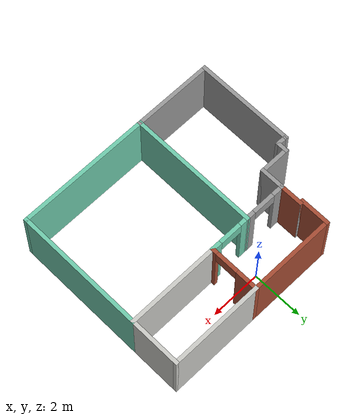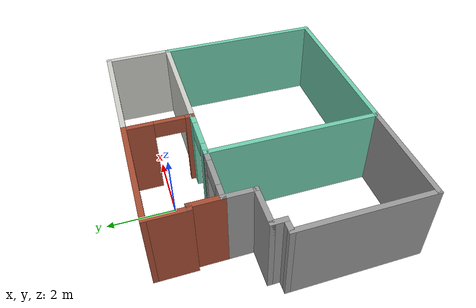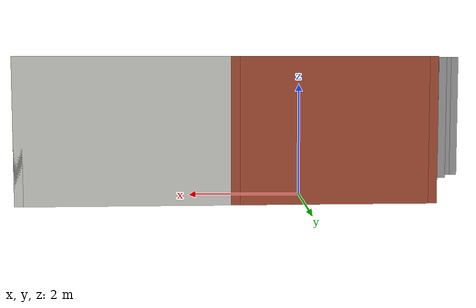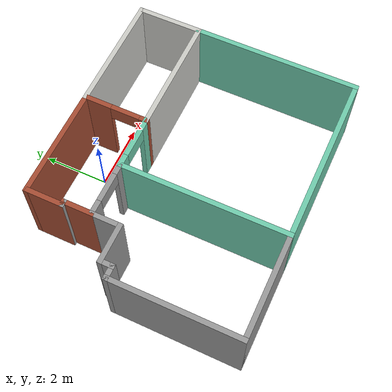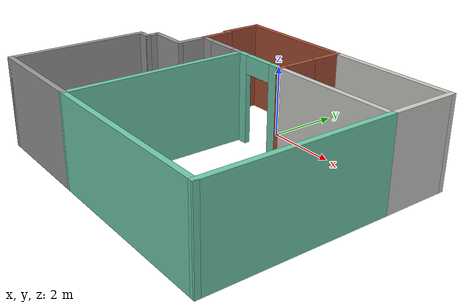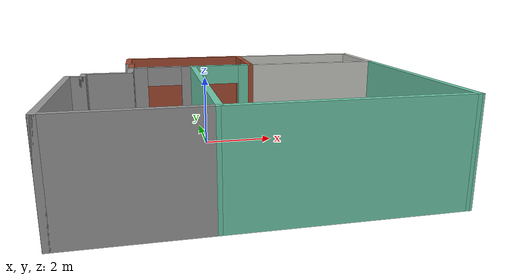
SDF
<?xml version='1.0'?>
<sdf version='1.6'>
  <model name='model'>
    <pose frame=''>0.624047 -2.53382 0 0 -0 0</pose>
    <link name='Wall_24'>
      <collision name='Wall_24_Collision'>
        <geometry>
          <box>
            <size>1.25 0.15 2.5</size>
          </box>
        </geometry>
        <pose frame=''>0 0 1.25 0 -0 0</pose>
      </collision>
      <visual name='Wall_24_Visual'>
        <pose frame=''>0 0 1.25 0 -0 0</pose>
        <geometry>
          <box>
            <size>1.25 0.15 2.5</size>
          </box>
        </geometry>
        <material>
          <script>
            <uri>file://media/materials/scripts/gazebo.material</uri>
            <name>Gazebo/Bricks</name>
          </script>
          <ambient>1 1 1 1</ambient>
        </material>
        <meta>
          <layer>0</layer>
        </meta>
      </visual>
      <pose frame=''>-2.79996 2.95018 0 0 0 -1.5708</pose>
    </link>
    <link name='Wall_26'>
      <collision name='Wall_26_Collision'>
        <geometry>
          <box>
            <size>0.25 0.15 2.5</size>
          </box>
        </geometry>
        <pose frame=''>0 0 1.25 0 -0 0</pose>
      </collision>
      <visual name='Wall_26_Visual'>
        <pose frame=''>0 0 1.25 0 -0 0</pose>
        <geometry>
          <box>
            <size>0.25 0.15 2.5</size>
          </box>
        </geometry>
        <material>
          <script>
            <uri>file://media/materials/scripts/gazebo.material</uri>
            <name>Gazebo/Grey</name>
          </script>
          <ambient>1 1 1 1</ambient>
        </material>
        <meta>
          <layer>0</layer>
        </meta>
      </visual>
      <pose frame=''>-2.74996 2.40017 0 0 -0 0</pose>
    </link>
    <link name='Wall_27'>
      <collision name='Wall_27_Collision'>
        <geometry>
          <box>
            <size>1 0.15 2.5</size>
          </box>
        </geometry>
        <pose frame=''>0 0 1.25 0 -0 0</pose>
      </collision>
      <visual name='Wall_27_Visual'>
        <pose frame=''>0 0 1.25 0 -0 0</pose>
        <geometry>
          <box>
            <size>1 0.15 2.5</size>
          </box>
        </geometry>
        <material>
          <script>
            <uri>file://media/materials/scripts/gazebo.material</uri>
            <name>Gazebo/Bricks</name>
          </script>
          <ambient>1 1 1 1</ambient>
        </material>
        <meta>
          <layer>0</layer>
        </meta>
      </visual>
      <pose frame=''>-2.69996 1.97517 0 0 0 -1.5708</pose>
    </link>
    <link name='Wall_28'>
      <pose frame=''>-1.89996 1.55018 0 0 -0 0</pose>
      <visual name='Wall_28_Visual_0'>
        <pose frame=''>-0.625185 0 1.25 0 -0 0</pose>
        <geometry>
          <box>
            <size>0.49963 0.15 2.5</size>
          </box>
        </geometry>
        <material>
          <script>
            <uri>file://media/materials/scripts/gazebo.material</uri>
            <name>Gazebo/Grey</name>
          </script>
          <ambient>1 1 1 1</ambient>
        </material>
        <meta>
          <layer>0</layer>
        </meta>
      </visual>
      <collision name='Wall_28_Collision_0'>
        <geometry>
          <box>
            <size>0.49963 0.15 2.5</size>
          </box>
        </geometry>
        <pose frame=''>-0.625185 0 1.25 0 -0 0</pose>
      </collision>
      <visual name='Wall_28_Visual_1'>
        <pose frame=''>0.699815 0 1.25 0 -0 0</pose>
        <geometry>
          <box>
            <size>0.35037 0.15 2.5</size>
          </box>
        </geometry>
        <material>
          <script>
            <uri>file://media/materials/scripts/gazebo.material</uri>
            <name>Gazebo/Grey</name>
          </script>
          <ambient>1 1 1 1</ambient>
        </material>
        <meta>
          <layer>0</layer>
        </meta>
      </visual>
      <collision name='Wall_28_Collision_1'>
        <geometry>
          <box>
            <size>0.35037 0.15 2.5</size>
          </box>
        </geometry>
        <pose frame=''>0.699815 0 1.25 0 -0 0</pose>
      </collision>
      <visual name='Wall_28_Visual_2'>
        <pose frame=''>0.07463 0 2.25 0 -0 0</pose>
        <geometry>
          <box>
            <size>0.9 0.15 0.5</size>
          </box>
        </geometry>
        <material>
          <script>
            <uri>file://media/materials/scripts/gazebo.material</uri>
            <name>Gazebo/Grey</name>
          </script>
          <ambient>1 1 1 1</ambient>
        </material>
        <meta>
          <layer>0</layer>
        </meta>
      </visual>
      <collision name='Wall_28_Collision_2'>
        <geometry>
          <box>
            <size>0.9 0.15 0.5</size>
          </box>
        </geometry>
        <pose frame=''>0.07463 0 2.25 0 -0 0</pose>
      </collision>
    </link>
    <link name='Wall_30'>
      <collision name='Wall_30_Collision'>
        <geometry>
          <box>
            <size>1 0.15 2.5</size>
          </box>
        </geometry>
        <pose frame=''>0 0 1.25 0 -0 0</pose>
      </collision>
      <visual name='Wall_30_Visual'>
        <pose frame=''>0 0 1.25 0 -0 0</pose>
        <geometry>
          <box>
            <size>1 0.15 2.5</size>
          </box>
        </geometry>
        <material>
          <script>
            <uri>file://media/materials/scripts/gazebo.material</uri>
            <name>Gazebo/Grey</name>
          </script>
          <ambient>1 1 1 1</ambient>
        </material>
        <meta>
          <layer>0</layer>
        </meta>
      </visual>
      <pose frame=''>-2.69996 1.12518 0 0 0 -1.5708</pose>
    </link>
    <link name='Wall_32'>
      <collision name='Wall_32_Collision'>
        <geometry>
          <box>
            <size>1.25 0.15 2.5</size>
          </box>
        </geometry>
        <pose frame=''>0 0 1.25 0 -0 0</pose>
      </collision>
      <visual name='Wall_32_Visual'>
        <pose frame=''>0 0 1.25 0 -0 0</pose>
        <geometry>
          <box>
            <size>1.25 0.15 2.5</size>
          </box>
        </geometry>
        <material>
          <script>
            <uri>file://media/materials/scripts/gazebo.material</uri>
            <name>Gazebo/Grey</name>
          </script>
          <ambient>1 1 1 1</ambient>
        </material>
        <meta>
          <layer>0</layer>
        </meta>
      </visual>
      <pose frame=''>-3.24996 0.700175 0 0 -0 3.14159</pose>
    </link>
    <link name='Wall_33'>
      <collision name='Wall_33_Collision'>
        <geometry>
          <box>
            <size>0.5 0.15 2.5</size>
          </box>
        </geometry>
        <pose frame=''>0 0 1.25 0 -0 0</pose>
      </collision>
      <visual name='Wall_33_Visual'>
        <pose frame=''>0 0 1.25 0 -0 0</pose>
        <geometry>
          <box>
            <size>0.5 0.15 2.5</size>
          </box>
        </geometry>
        <material>
          <script>
            <uri>file://media/materials/scripts/gazebo.material</uri>
            <name>Gazebo/Grey</name>
          </script>
          <ambient>1 1 1 1</ambient>
        </material>
        <meta>
          <layer>0</layer>
        </meta>
      </visual>
      <pose frame=''>-3.79996 0.525175 0 0 0 -1.5708</pose>
    </link>
    <link name='Wall_34'>
      <collision name='Wall_34_Collision'>
        <geometry>
          <box>
            <size>0.5 0.15 2.5</size>
          </box>
        </geometry>
        <pose frame=''>0 0 1.25 0 -0 0</pose>
      </collision>
      <visual name='Wall_34_Visual'>
        <pose frame=''>0 0 1.25 0 -0 0</pose>
        <geometry>
          <box>
            <size>0.5 0.15 2.5</size>
          </box>
        </geometry>
        <material>
          <script>
            <uri>file://media/materials/scripts/gazebo.material</uri>
            <name>Gazebo/Grey</name>
          </script>
          <ambient>1 1 1 1</ambient>
        </material>
        <meta>
          <layer>0</layer>
        </meta>
      </visual>
      <pose frame=''>-3.97496 0.350175 0 0 -0 3.14159</pose>
    </link>
    <link name='Wall_35'>
      <collision name='Wall_35_Collision'>
        <geometry>
          <box>
            <size>4 0.15 2.5</size>
          </box>
        </geometry>
        <pose frame=''>0 0 1.25 0 -0 0</pose>
      </collision>
      <visual name='Wall_35_Visual'>
        <pose frame=''>0 0 1.25 0 -0 0</pose>
        <geometry>
          <box>
            <size>4 0.15 2.5</size>
          </box>
        </geometry>
        <material>
          <script>
            <uri>file://media/materials/scripts/gazebo.material</uri>
            <name>Gazebo/Grey</name>
          </script>
          <ambient>1 1 1 1</ambient>
        </material>
        <meta>
          <layer>0</layer>
        </meta>
      </visual>
      <pose frame=''>-4.14996 -1.57482 0 0 0 -1.5708</pose>
    </link>
    <link name='Wall_36'>
      <collision name='Wall_36_Collision'>
        <geometry>
          <box>
            <size>3.25 0.15 2.5</size>
          </box>
        </geometry>
        <pose frame=''>0 0 1.25 0 -0 0</pose>
      </collision>
      <visual name='Wall_36_Visual'>
        <pose frame=''>0 0 1.25 0 -0 0</pose>
        <geometry>
          <box>
            <size>3.25 0.15 2.5</size>
          </box>
        </geometry>
        <material>
          <script>
            <uri>file://media/materials/scripts/gazebo.material</uri>
            <name>Gazebo/Grey</name>
          </script>
          <ambient>1 1 1 1</ambient>
        </material>
        <meta>
          <layer>0</layer>
        </meta>
      </visual>
      <pose frame=''>-2.59996 -3.49982 0 0 -0 0</pose>
    </link>
    <link name='Wall_37'>
      <collision name='Wall_37_Collision'>
        <geometry>
          <box>
            <size>5.2 0.15 2.5</size>
          </box>
        </geometry>
        <pose frame=''>0 0 1.25 0 -0 0</pose>
      </collision>
      <visual name='Wall_37_Visual'>
        <pose frame=''>0 0 1.25 0 -0 0</pose>
        <geometry>
          <box>
            <size>5.2 0.15 2.5</size>
          </box>
        </geometry>
        <material>
          <script>
            <uri>file://media/materials/scripts/gazebo.material</uri>
            <name>Gazebo/Grey</name>
          </script>
          <ambient>0.435294 0.796078 0.67451 1</ambient>
        </material>
        <meta>
          <layer>0</layer>
        </meta>
      </visual>
      <pose frame=''>-1.04996 -0.974825 0 0 -0 1.5708</pose>
    </link>
    <link name='Wall_39'>
      <pose frame=''>0.549953 2.52482 0 0 -0 1.5708</pose>
      <visual name='Wall_39_Visual_0'>
        <pose frame=''>-0.906032 0 1.25 0 -0 0</pose>
        <geometry>
          <box>
            <size>0.288289 0.15 2.5</size>
          </box>
        </geometry>
        <material>
          <script>
            <uri>file://media/materials/scripts/gazebo.material</uri>
            <name>Gazebo/Bricks</name>
          </script>
          <ambient>1 1 1 1</ambient>
        </material>
        <meta>
          <layer>0</layer>
        </meta>
      </visual>
      <collision name='Wall_39_Collision_0'>
        <geometry>
          <box>
            <size>0.288289 0.15 2.5</size>
          </box>
        </geometry>
        <pose frame=''>-0.906032 0 1.25 0 -0 0</pose>
      </collision>
      <visual name='Wall_39_Visual_1'>
        <pose frame=''>0.594145 0 1.25 0 -0 0</pose>
        <geometry>
          <box>
            <size>0.912064 0.15 2.5</size>
          </box>
        </geometry>
        <material>
          <script>
            <uri>file://media/materials/scripts/gazebo.material</uri>
            <name>Gazebo/Bricks</name>
          </script>
          <ambient>1 1 1 1</ambient>
        </material>
        <meta>
          <layer>0</layer>
        </meta>
      </visual>
      <collision name='Wall_39_Collision_1'>
        <geometry>
          <box>
            <size>0.912064 0.15 2.5</size>
          </box>
        </geometry>
        <pose frame=''>0.594145 0 1.25 0 -0 0</pose>
      </collision>
      <visual name='Wall_39_Visual_2'>
        <pose frame=''>-0.311887 0 2.25 0 -0 0</pose>
        <geometry>
          <box>
            <size>0.9 0.15 0.5</size>
          </box>
        </geometry>
        <material>
          <script>
            <uri>file://media/materials/scripts/gazebo.material</uri>
            <name>Gazebo/Bricks</name>
          </script>
          <ambient>1 1 1 1</ambient>
        </material>
        <meta>
          <layer>0</layer>
        </meta>
      </visual>
      <collision name='Wall_39_Collision_2'>
        <geometry>
          <box>
            <size>0.9 0.15 0.5</size>
          </box>
        </geometry>
        <pose frame=''>-0.311887 0 2.25 0 -0 0</pose>
      </collision>
    </link>
    <link name='Wall_41'>
      <collision name='Wall_41_Collision'>
        <geometry>
          <box>
            <size>3.5 0.15 2.5</size>
          </box>
        </geometry>
        <pose frame=''>0 0 1.25 0 -0 0</pose>
      </collision>
      <visual name='Wall_41_Visual'>
        <pose frame=''>0 0 1.25 0 -0 0</pose>
        <geometry>
          <box>
            <size>3.5 0.15 2.5</size>
          </box>
        </geometry>
        <material>
          <script>
            <uri>file://media/materials/scripts/gazebo.material</uri>
            <name>Gazebo/Bricks</name>
          </script>
          <ambient>1 1 1 1</ambient>
        </material>
        <meta>
          <layer>0</layer>
        </meta>
      </visual>
      <pose frame=''>-1.125 3.5 0 0 -0 3.14149</pose>
    </link>
    <link name='Wall_44'>
      <pose frame=''>-0.250002 1.55 0 0 0 -0.000221</pose>
      <visual name='Wall_44_Visual_0'>
        <pose frame=''>-0.664415 0 1.25 0 -0 0</pose>
        <geometry>
          <box>
            <size>0.42108 0.15 2.5</size>
          </box>
        </geometry>
        <material>
          <script>
            <uri>file://media/materials/scripts/gazebo.material</uri>
            <name>Gazebo/Grey</name>
          </script>
          <ambient>0.435294 0.796078 0.67451 1</ambient>
        </material>
        <meta>
          <layer>0</layer>
        </meta>
      </visual>
      <collision name='Wall_44_Collision_0'>
        <geometry>
          <box>
            <size>0.42108 0.15 2.5</size>
          </box>
        </geometry>
        <pose frame=''>-0.664415 0 1.25 0 -0 0</pose>
      </collision>
      <visual name='Wall_44_Visual_1'>
        <pose frame=''>0.66054 0 1.25 0 -0 0</pose>
        <geometry>
          <box>
            <size>0.42883 0.15 2.5</size>
          </box>
        </geometry>
        <material>
          <script>
            <uri>file://media/materials/scripts/gazebo.material</uri>
            <name>Gazebo/Grey</name>
          </script>
          <ambient>0.435294 0.796078 0.67451 1</ambient>
        </material>
        <meta>
          <layer>0</layer>
        </meta>
      </visual>
      <collision name='Wall_44_Collision_1'>
        <geometry>
          <box>
            <size>0.42883 0.15 2.5</size>
          </box>
        </geometry>
        <pose frame=''>0.66054 0 1.25 0 -0 0</pose>
      </collision>
      <visual name='Wall_44_Visual_2'>
        <pose frame=''>-0.003875 0 2.25 0 -0 0</pose>
        <geometry>
          <box>
            <size>0.9 0.15 0.5</size>
          </box>
        </geometry>
        <material>
          <script>
            <uri>file://media/materials/scripts/gazebo.material</uri>
            <name>Gazebo/Grey</name>
          </script>
          <ambient>0.435294 0.796078 0.67451 1</ambient>
        </material>
        <meta>
          <layer>0</layer>
        </meta>
      </visual>
      <collision name='Wall_44_Collision_2'>
        <geometry>
          <box>
            <size>0.9 0.15 0.5</size>
          </box>
        </geometry>
        <pose frame=''>-0.003875 0 2.25 0 -0 0</pose>
      </collision>
    </link>
    <link name='Wall_45'>
      <collision name='Wall_45_Collision'>
        <geometry>
          <box>
            <size>3.75 0.15 2.5</size>
          </box>
        </geometry>
        <pose frame=''>0 0 1.25 0 -0 0</pose>
      </collision>
      <visual name='Wall_45_Visual'>
        <pose frame=''>0 0 1.25 0 -0 0</pose>
        <geometry>
          <box>
            <size>3.75 0.15 2.5</size>
          </box>
        </geometry>
        <material>
          <script>
            <uri>file://media/materials/scripts/gazebo.material</uri>
            <name>Gazebo/CeilingTiled</name>
          </script>
          <ambient>0.435294 0.796078 0.67451 1</ambient>
        </material>
        <meta>
          <layer>0</layer>
        </meta>
      </visual>
      <pose frame=''>2.34995 1.54982 0 0 -0 0</pose>
    </link>
    <link name='Wall_46'>
      <collision name='Wall_46_Collision'>
        <geometry>
          <box>
            <size>2.1 0.15 2.5</size>
          </box>
        </geometry>
        <pose frame=''>0 0 1.25 0 -0 0</pose>
      </collision>
      <visual name='Wall_46_Visual'>
        <pose frame=''>0 0 1.25 0 -0 0</pose>
        <geometry>
          <box>
            <size>2.1 0.15 2.5</size>
          </box>
        </geometry>
        <material>
          <script>
            <uri>file://media/materials/scripts/gazebo.material</uri>
            <name>Gazebo/CeilingTiled</name>
          </script>
          <ambient>1 1 1 1</ambient>
        </material>
        <meta>
          <layer>0</layer>
        </meta>
      </visual>
      <pose frame=''>4.14995 2.52482 0 0 -0 1.5708</pose>
    </link>
    <link name='Wall_48'>
      <collision name='Wall_48_Collision'>
        <geometry>
          <box>
            <size>3.75 0.15 2.5</size>
          </box>
        </geometry>
        <pose frame=''>0 0 1.25 0 -0 0</pose>
      </collision>
      <visual name='Wall_48_Visual'>
        <pose frame=''>0 0 1.25 0 -0 0</pose>
        <geometry>
          <box>
            <size>3.75 0.15 2.5</size>
          </box>
        </geometry>
        <material>
          <script>
            <uri>file://media/materials/scripts/gazebo.material</uri>
            <name>Gazebo/CeilingTiled</name>
          </script>
          <ambient>1 1 1 1</ambient>
        </material>
        <meta>
          <layer>0</layer>
        </meta>
      </visual>
      <pose frame=''>2.34995 3.49982 0 0 -0 0</pose>
    </link>
    <link name='Wall_50'>
      <collision name='Wall_50_Collision'>
        <geometry>
          <box>
            <size>5.2 0.15 2.5</size>
          </box>
        </geometry>
        <pose frame=''>0 0 1.25 0 -0 0</pose>
      </collision>
      <visual name='Wall_50_Visual'>
        <pose frame=''>0 0 1.25 0 -0 0</pose>
        <geometry>
          <box>
            <size>5.2 0.15 2.5</size>
          </box>
        </geometry>
        <material>
          <script>
            <uri>file://media/materials/scripts/gazebo.material</uri>
            <name>Gazebo/Grey</name>
          </script>
          <ambient>0.435294 0.796078 0.67451 1</ambient>
        </material>
        <meta>
          <layer>0</layer>
        </meta>
      </visual>
      <pose frame=''>4.14995 -0.975178 0 0 0 -1.5708</pose>
    </link>
    <link name='Wall_52'>
      <collision name='Wall_52_Collision'>
        <geometry>
          <box>
            <size>5.34991 0.15 2.5</size>
          </box>
        </geometry>
        <pose frame=''>0 0 1.25 0 -0 0</pose>
      </collision>
      <visual name='Wall_52_Visual'>
        <pose frame=''>0 0 1.25 0 -0 0</pose>
        <geometry>
          <box>
            <size>5.34991 0.15 2.5</size>
          </box>
        </geometry>
        <material>
          <script>
            <uri>file://media/materials/scripts/gazebo.material</uri>
            <name>Gazebo/Grey</name>
          </script>
          <ambient>0.435294 0.796078 0.67451 1</ambient>
        </material>
        <meta>
          <layer>0</layer>
        </meta>
      </visual>
      <pose frame=''>1.55 -3.5 0 0 0 -6.8e-05</pose>
    </link>
    <static>1</static>
  </model>
</sdf>
